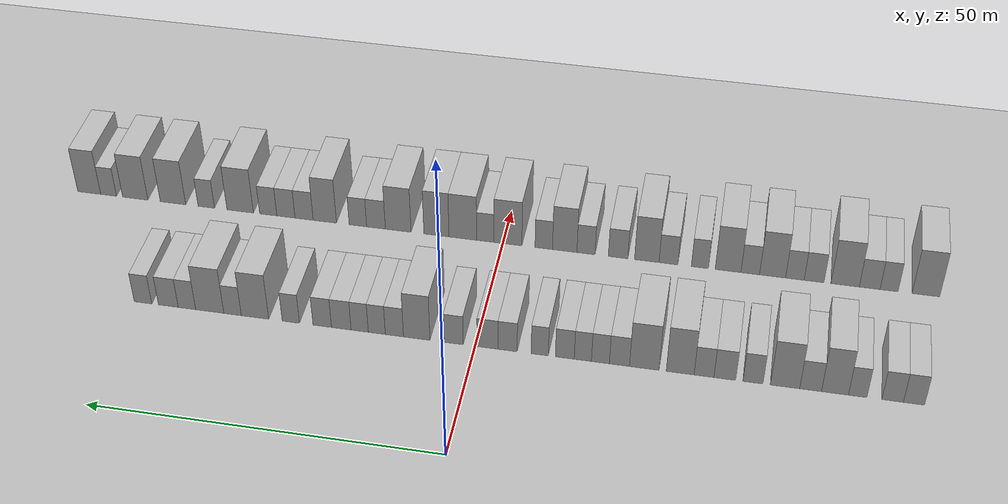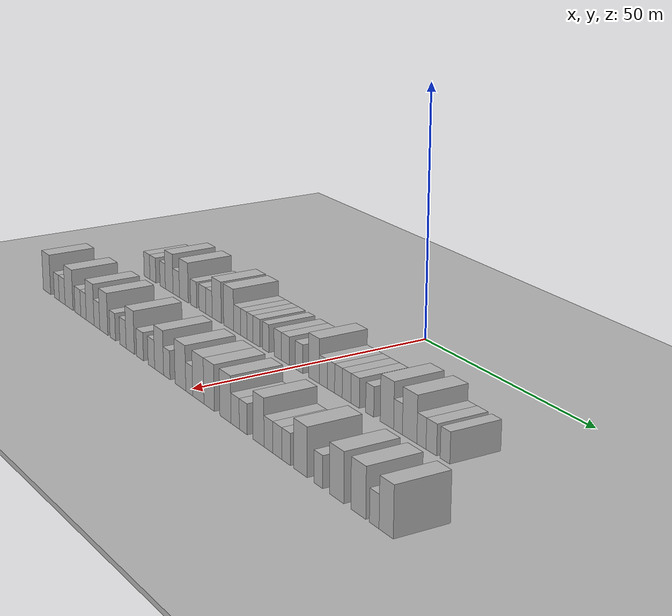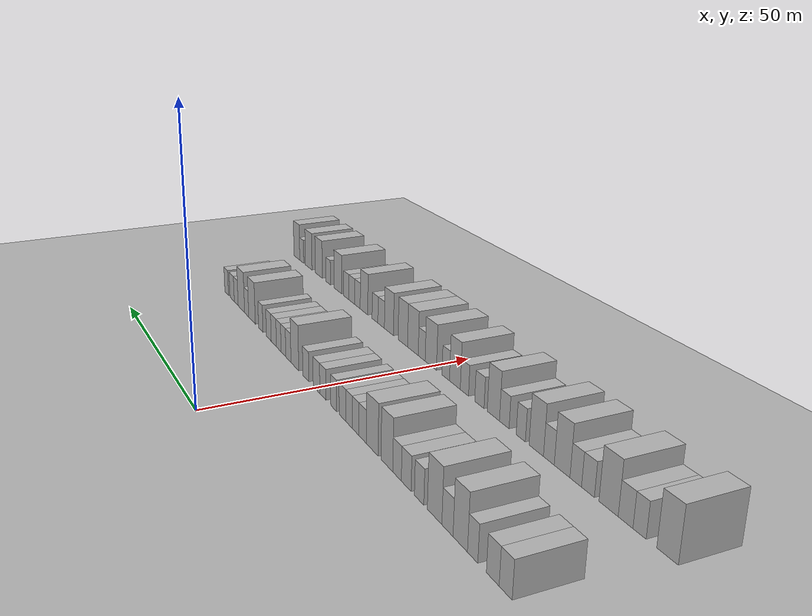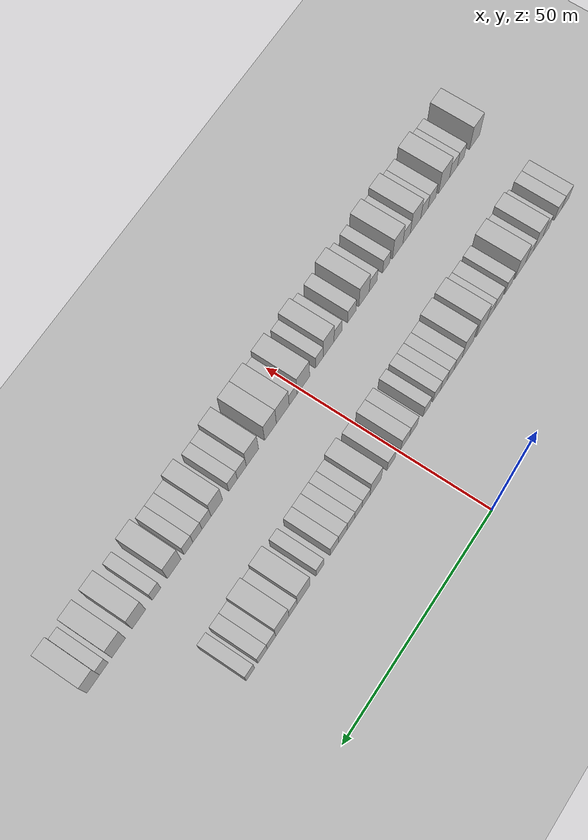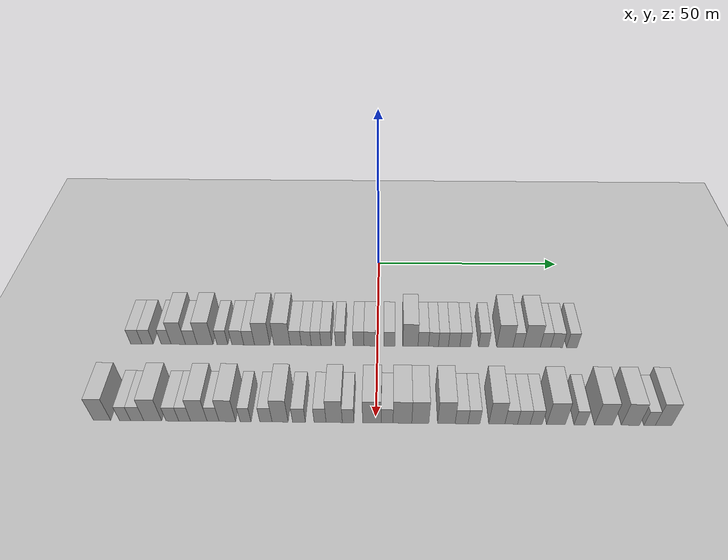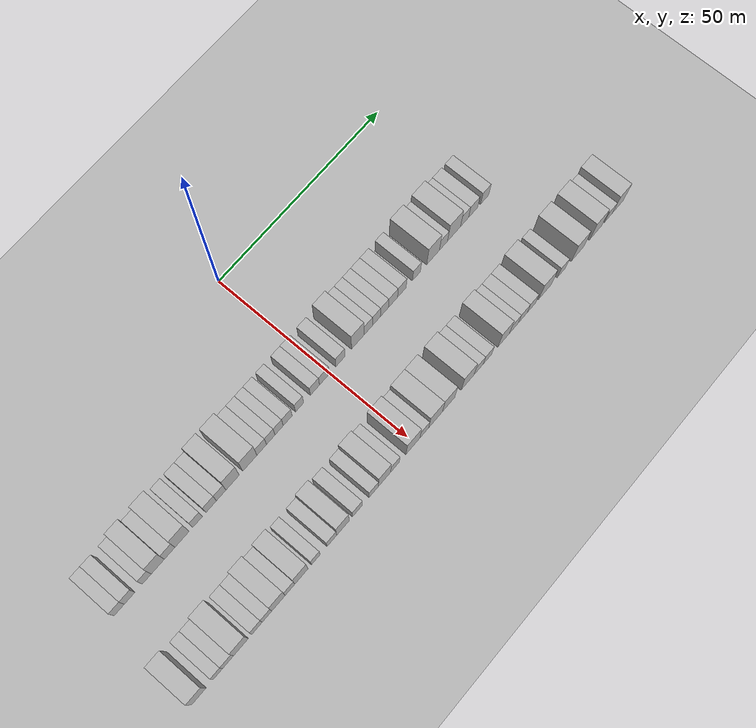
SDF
<sdf version="1.6">
 <world name="default">
  <include><name>ground_plane_1</name><uri>model://HANNAS_ground_plane</uri></include>
  <include>
   <name>ground_plane_2</name>
   <uri>model://HANNAS_ground_plane</uri>
   <pose>100 0 0  0 0 0</pose>
  </include>
  <model name="building_32">
   <static>1</static>
   <pose>25.0000 -60.7182 0 0.000000 0.000000 0.000000</pose>
   <link name="link">
    <pose>0 0 3.00 0 0 0</pose>
    <collision name="collision"><geometry><box><size>10.0000 2.8323 6.0000</size></box></geometry></collision>
    <visual name="visual">
     <cast_shadows>0</cast_shadows>
     <geometry><box><size>10.0000 2.8323 6.0000</size></box></geometry>
     <material>
      <script>
       <uri>model://HANNAS_wall/materials/scripts</uri>
       <uri>model://HANNAS_wall/materials/textures</uri>
       <name>vrc/HANNAS_wall</name>
      </script>
     </material>
    </visual>
   </link>
  </model>
  <model name="building_33">
   <static>1</static>
   <pose>25.0000 -57.8612 0 0.000000 0.000000 0.000000</pose>
   <link name="link">
    <pose>0 0 3.00 0 0 0</pose>
    <collision name="collision"><geometry><box><size>10.0000 2.8819 6.0000</size></box></geometry></collision>
    <visual name="visual">
     <cast_shadows>0</cast_shadows>
     <geometry><box><size>10.0000 2.8819 6.0000</size></box></geometry>
     <material>
      <script>
       <uri>model://HANNAS_wall/materials/scripts</uri>
       <uri>model://HANNAS_wall/materials/textures</uri>
       <name>vrc/HANNAS_wall</name>
      </script>
     </material>
    </visual>
   </link>
  </model>
  <model name="building_34">
   <static>1</static>
   <pose>25.0000 -53.1745 0 0.000000 0.000000 0.000000</pose>
   <link name="link">
    <pose>0 0 3.00 0 0 0</pose>
    <collision name="collision"><geometry><box><size>10.0000 2.4914 6.0000</size></box></geometry></collision>
    <visual name="visual">
     <cast_shadows>0</cast_shadows>
     <geometry><box><size>10.0000 2.4914 6.0000</size></box></geometry>
     <material>
      <script>
       <uri>model://HANNAS_wall/materials/scripts</uri>
       <uri>model://HANNAS_wall/materials/textures</uri>
       <name>vrc/HANNAS_wall</name>
      </script>
     </material>
    </visual>
   </link>
  </model>
  <model name="building_35">
   <static>1</static>
   <pose>25.0000 -50.1071 0 0.000000 0.000000 0.000000</pose>
   <link name="link">
    <pose>0 0 4.50 0 0 0</pose>
    <collision name="collision"><geometry><box><size>10.0000 3.6433 9.0000</size></box></geometry></collision>
    <visual name="visual">
     <cast_shadows>0</cast_shadows>
     <geometry><box><size>10.0000 3.6433 9.0000</size></box></geometry>
     <material>
      <script>
       <uri>model://HANNAS_wall/materials/scripts</uri>
       <uri>model://HANNAS_wall/materials/textures</uri>
       <name>vrc/HANNAS_wall</name>
      </script>
     </material>
    </visual>
   </link>
  </model>
  <model name="building_36">
   <static>1</static>
   <pose>25.0000 -46.8084 0 0.000000 0.000000 0.000000</pose>
   <link name="link">
    <pose>0 0 3.00 0 0 0</pose>
    <collision name="collision"><geometry><box><size>10.0000 2.9542 6.0000</size></box></geometry></collision>
    <visual name="visual">
     <cast_shadows>0</cast_shadows>
     <geometry><box><size>10.0000 2.9542 6.0000</size></box></geometry>
     <material>
      <script>
       <uri>model://HANNAS_wall/materials/scripts</uri>
       <uri>model://HANNAS_wall/materials/textures</uri>
       <name>vrc/HANNAS_wall</name>
      </script>
     </material>
    </visual>
   </link>
  </model>
  <model name="building_37">
   <static>1</static>
   <pose>25.0000 -43.3274 0 0.000000 0.000000 0.000000</pose>
   <link name="link">
    <pose>0 0 4.50 0 0 0</pose>
    <collision name="collision"><geometry><box><size>10.0000 4.0077 9.0000</size></box></geometry></collision>
    <visual name="visual">
     <cast_shadows>0</cast_shadows>
     <geometry><box><size>10.0000 4.0077 9.0000</size></box></geometry>
     <material>
      <script>
       <uri>model://HANNAS_wall/materials/scripts</uri>
       <uri>model://HANNAS_wall/materials/textures</uri>
       <name>vrc/HANNAS_wall</name>
      </script>
     </material>
    </visual>
   </link>
  </model>
  <model name="building_38">
   <static>1</static>
   <pose>25.0000 -38.9517 0 0.000000 0.000000 0.000000</pose>
   <link name="link">
    <pose>0 0 3.00 0 0 0</pose>
    <collision name="collision"><geometry><box><size>10.0000 2.7437 6.0000</size></box></geometry></collision>
    <visual name="visual">
     <cast_shadows>0</cast_shadows>
     <geometry><box><size>10.0000 2.7437 6.0000</size></box></geometry>
     <material>
      <script>
       <uri>model://HANNAS_wall/materials/scripts</uri>
       <uri>model://HANNAS_wall/materials/textures</uri>
       <name>vrc/HANNAS_wall</name>
      </script>
     </material>
    </visual>
   </link>
  </model>
  <model name="building_39">
   <static>1</static>
   <pose>25.0000 -35.0839 0 0.000000 0.000000 0.000000</pose>
   <link name="link">
    <pose>0 0 3.00 0 0 0</pose>
    <collision name="collision"><geometry><box><size>10.0000 2.9920 6.0000</size></box></geometry></collision>
    <visual name="visual">
     <cast_shadows>0</cast_shadows>
     <geometry><box><size>10.0000 2.9920 6.0000</size></box></geometry>
     <material>
      <script>
       <uri>model://HANNAS_wall/materials/scripts</uri>
       <uri>model://HANNAS_wall/materials/textures</uri>
       <name>vrc/HANNAS_wall</name>
      </script>
     </material>
    </visual>
   </link>
  </model>
  <model name="building_40">
   <static>1</static>
   <pose>25.0000 -32.2268 0 0.000000 0.000000 0.000000</pose>
   <link name="link">
    <pose>0 0 3.00 0 0 0</pose>
    <collision name="collision"><geometry><box><size>10.0000 2.7221 6.0000</size></box></geometry></collision>
    <visual name="visual">
     <cast_shadows>0</cast_shadows>
     <geometry><box><size>10.0000 2.7221 6.0000</size></box></geometry>
     <material>
      <script>
       <uri>model://HANNAS_wall/materials/scripts</uri>
       <uri>model://HANNAS_wall/materials/textures</uri>
       <name>vrc/HANNAS_wall</name>
      </script>
     </material>
    </visual>
   </link>
  </model>
  <model name="building_41">
   <static>1</static>
   <pose>25.0000 -28.9342 0 0.000000 0.000000 0.000000</pose>
   <link name="link">
    <pose>0 0 4.50 0 0 0</pose>
    <collision name="collision"><geometry><box><size>10.0000 3.8631 9.0000</size></box></geometry></collision>
    <visual name="visual">
     <cast_shadows>0</cast_shadows>
     <geometry><box><size>10.0000 3.8631 9.0000</size></box></geometry>
     <material>
      <script>
       <uri>model://HANNAS_wall/materials/scripts</uri>
       <uri>model://HANNAS_wall/materials/textures</uri>
       <name>vrc/HANNAS_wall</name>
      </script>
     </material>
    </visual>
   </link>
  </model>
  <model name="building_42">
   <static>1</static>
   <pose>25.0000 -23.9448 0 0.000000 0.000000 0.000000</pose>
   <link name="link">
    <pose>0 0 4.50 0 0 0</pose>
    <collision name="collision"><geometry><box><size>10.0000 4.1158 9.0000</size></box></geometry></collision>
    <visual name="visual">
     <cast_shadows>0</cast_shadows>
     <geometry><box><size>10.0000 4.1158 9.0000</size></box></geometry>
     <material>
      <script>
       <uri>model://HANNAS_wall/materials/scripts</uri>
       <uri>model://HANNAS_wall/materials/textures</uri>
       <name>vrc/HANNAS_wall</name>
      </script>
     </material>
    </visual>
   </link>
  </model>
  <model name="building_43">
   <static>1</static>
   <pose>25.0000 -20.4811 0 0.000000 0.000000 0.000000</pose>
   <link name="link">
    <pose>0 0 3.00 0 0 0</pose>
    <collision name="collision"><geometry><box><size>10.0000 2.8116 6.0000</size></box></geometry></collision>
    <visual name="visual">
     <cast_shadows>0</cast_shadows>
     <geometry><box><size>10.0000 2.8116 6.0000</size></box></geometry>
     <material>
      <script>
       <uri>model://HANNAS_wall/materials/scripts</uri>
       <uri>model://HANNAS_wall/materials/textures</uri>
       <name>vrc/HANNAS_wall</name>
      </script>
     </material>
    </visual>
   </link>
  </model>
  <model name="building_44">
   <static>1</static>
   <pose>25.0000 -17.8155 0 0.000000 0.000000 0.000000</pose>
   <link name="link">
    <pose>0 0 3.00 0 0 0</pose>
    <collision name="collision"><geometry><box><size>10.0000 2.5195 6.0000</size></box></geometry></collision>
    <visual name="visual">
     <cast_shadows>0</cast_shadows>
     <geometry><box><size>10.0000 2.5195 6.0000</size></box></geometry>
     <material>
      <script>
       <uri>model://HANNAS_wall/materials/scripts</uri>
       <uri>model://HANNAS_wall/materials/textures</uri>
       <name>vrc/HANNAS_wall</name>
      </script>
     </material>
    </visual>
   </link>
  </model>
  <model name="building_45">
   <static>1</static>
   <pose>25.0000 -15.3467 0 0.000000 0.000000 0.000000</pose>
   <link name="link">
    <pose>0 0 3.00 0 0 0</pose>
    <collision name="collision"><geometry><box><size>10.0000 2.4181 6.0000</size></box></geometry></collision>
    <visual name="visual">
     <cast_shadows>0</cast_shadows>
     <geometry><box><size>10.0000 2.4181 6.0000</size></box></geometry>
     <material>
      <script>
       <uri>model://HANNAS_wall/materials/scripts</uri>
       <uri>model://HANNAS_wall/materials/textures</uri>
       <name>vrc/HANNAS_wall</name>
      </script>
     </material>
    </visual>
   </link>
  </model>
  <model name="building_46">
   <static>1</static>
   <pose>25.0000 -12.8056 0 0.000000 0.000000 0.000000</pose>
   <link name="link">
    <pose>0 0 3.00 0 0 0</pose>
    <collision name="collision"><geometry><box><size>10.0000 2.6641 6.0000</size></box></geometry></collision>
    <visual name="visual">
     <cast_shadows>0</cast_shadows>
     <geometry><box><size>10.0000 2.6641 6.0000</size></box></geometry>
     <material>
      <script>
       <uri>model://HANNAS_wall/materials/scripts</uri>
       <uri>model://HANNAS_wall/materials/textures</uri>
       <name>vrc/HANNAS_wall</name>
      </script>
     </material>
    </visual>
   </link>
  </model>
  <model name="building_47">
   <static>1</static>
   <pose>25.0000 -9.2607 0 0.000000 0.000000 0.000000</pose>
   <link name="link">
    <pose>0 0 3.00 0 0 0</pose>
    <collision name="collision"><geometry><box><size>10.0000 2.4256 6.0000</size></box></geometry></collision>
    <visual name="visual">
     <cast_shadows>0</cast_shadows>
     <geometry><box><size>10.0000 2.4256 6.0000</size></box></geometry>
     <material>
      <script>
       <uri>model://HANNAS_wall/materials/scripts</uri>
       <uri>model://HANNAS_wall/materials/textures</uri>
       <name>vrc/HANNAS_wall</name>
      </script>
     </material>
    </visual>
   </link>
  </model>
  <model name="building_48">
   <static>1</static>
   <pose>25.0000 -4.6812 0 0.000000 0.000000 0.000000</pose>
   <link name="link">
    <pose>0 0 3.00 0 0 0</pose>
    <collision name="collision"><geometry><box><size>10.0000 2.7335 6.0000</size></box></geometry></collision>
    <visual name="visual">
     <cast_shadows>0</cast_shadows>
     <geometry><box><size>10.0000 2.7335 6.0000</size></box></geometry>
     <material>
      <script>
       <uri>model://HANNAS_wall/materials/scripts</uri>
       <uri>model://HANNAS_wall/materials/textures</uri>
       <name>vrc/HANNAS_wall</name>
      </script>
     </material>
    </visual>
   </link>
  </model>
  <model name="building_49">
   <static>1</static>
   <pose>25.0000 -1.8331 0 0.000000 0.000000 0.000000</pose>
   <link name="link">
    <pose>0 0 3.00 0 0 0</pose>
    <collision name="collision"><geometry><box><size>10.0000 2.9627 6.0000</size></box></geometry></collision>
    <visual name="visual">
     <cast_shadows>0</cast_shadows>
     <geometry><box><size>10.0000 2.9627 6.0000</size></box></geometry>
     <material>
      <script>
       <uri>model://HANNAS_wall/materials/scripts</uri>
       <uri>model://HANNAS_wall/materials/textures</uri>
       <name>vrc/HANNAS_wall</name>
      </script>
     </material>
    </visual>
   </link>
  </model>
  <model name="building_50">
   <static>1</static>
   <pose>25.0000 3.0453 0 0.000000 0.000000 0.000000</pose>
   <link name="link">
    <pose>0 0 3.00 0 0 0</pose>
    <collision name="collision"><geometry><box><size>10.0000 2.7942 6.0000</size></box></geometry></collision>
    <visual name="visual">
     <cast_shadows>0</cast_shadows>
     <geometry><box><size>10.0000 2.7942 6.0000</size></box></geometry>
     <material>
      <script>
       <uri>model://HANNAS_wall/materials/scripts</uri>
       <uri>model://HANNAS_wall/materials/textures</uri>
       <name>vrc/HANNAS_wall</name>
      </script>
     </material>
    </visual>
   </link>
  </model>
  <model name="building_51">
   <static>1</static>
   <pose>25.0000 8.3558 0 0.000000 0.000000 0.000000</pose>
   <link name="link">
    <pose>0 0 4.50 0 0 0</pose>
    <collision name="collision"><geometry><box><size>10.0000 3.8267 9.0000</size></box></geometry></collision>
    <visual name="visual">
     <cast_shadows>0</cast_shadows>
     <geometry><box><size>10.0000 3.8267 9.0000</size></box></geometry>
     <material>
      <script>
       <uri>model://HANNAS_wall/materials/scripts</uri>
       <uri>model://HANNAS_wall/materials/textures</uri>
       <name>vrc/HANNAS_wall</name>
      </script>
     </material>
    </visual>
   </link>
  </model>
  <model name="building_52">
   <static>1</static>
   <pose>25.0000 11.5897 0 0.000000 0.000000 0.000000</pose>
   <link name="link">
    <pose>0 0 3.00 0 0 0</pose>
    <collision name="collision"><geometry><box><size>10.0000 2.6410 6.0000</size></box></geometry></collision>
    <visual name="visual">
     <cast_shadows>0</cast_shadows>
     <geometry><box><size>10.0000 2.6410 6.0000</size></box></geometry>
     <material>
      <script>
       <uri>model://HANNAS_wall/materials/scripts</uri>
       <uri>model://HANNAS_wall/materials/textures</uri>
       <name>vrc/HANNAS_wall</name>
      </script>
     </material>
    </visual>
   </link>
  </model>
  <model name="building_53">
   <static>1</static>
   <pose>25.0000 14.1495 0 0.000000 0.000000 0.000000</pose>
   <link name="link">
    <pose>0 0 3.00 0 0 0</pose>
    <collision name="collision"><geometry><box><size>10.0000 2.4786 6.0000</size></box></geometry></collision>
    <visual name="visual">
     <cast_shadows>0</cast_shadows>
     <geometry><box><size>10.0000 2.4786 6.0000</size></box></geometry>
     <material>
      <script>
       <uri>model://HANNAS_wall/materials/scripts</uri>
       <uri>model://HANNAS_wall/materials/textures</uri>
       <name>vrc/HANNAS_wall</name>
      </script>
     </material>
    </visual>
   </link>
  </model>
  <model name="building_54">
   <static>1</static>
   <pose>25.0000 16.6423 0 0.000000 0.000000 0.000000</pose>
   <link name="link">
    <pose>0 0 3.00 0 0 0</pose>
    <collision name="collision"><geometry><box><size>10.0000 2.5071 6.0000</size></box></geometry></collision>
    <visual name="visual">
     <cast_shadows>0</cast_shadows>
     <geometry><box><size>10.0000 2.5071 6.0000</size></box></geometry>
     <material>
      <script>
       <uri>model://HANNAS_wall/materials/scripts</uri>
       <uri>model://HANNAS_wall/materials/textures</uri>
       <name>vrc/HANNAS_wall</name>
      </script>
     </material>
    </visual>
   </link>
  </model>
  <model name="building_55">
   <static>1</static>
   <pose>25.0000 19.3289 0 0.000000 0.000000 0.000000</pose>
   <link name="link">
    <pose>0 0 3.00 0 0 0</pose>
    <collision name="collision"><geometry><box><size>10.0000 2.8659 6.0000</size></box></geometry></collision>
    <visual name="visual">
     <cast_shadows>0</cast_shadows>
     <geometry><box><size>10.0000 2.8659 6.0000</size></box></geometry>
     <material>
      <script>
       <uri>model://HANNAS_wall/materials/scripts</uri>
       <uri>model://HANNAS_wall/materials/textures</uri>
       <name>vrc/HANNAS_wall</name>
      </script>
     </material>
    </visual>
   </link>
  </model>
  <model name="building_56">
   <static>1</static>
   <pose>25.0000 22.1163 0 0.000000 0.000000 0.000000</pose>
   <link name="link">
    <pose>0 0 3.00 0 0 0</pose>
    <collision name="collision"><geometry><box><size>10.0000 2.7088 6.0000</size></box></geometry></collision>
    <visual name="visual">
     <cast_shadows>0</cast_shadows>
     <geometry><box><size>10.0000 2.7088 6.0000</size></box></geometry>
     <material>
      <script>
       <uri>model://HANNAS_wall/materials/scripts</uri>
       <uri>model://HANNAS_wall/materials/textures</uri>
       <name>vrc/HANNAS_wall</name>
      </script>
     </material>
    </visual>
   </link>
  </model>
  <model name="building_57">
   <static>1</static>
   <pose>25.0000 26.7420 0 0.000000 0.000000 0.000000</pose>
   <link name="link">
    <pose>0 0 3.00 0 0 0</pose>
    <collision name="collision"><geometry><box><size>10.0000 2.5427 6.0000</size></box></geometry></collision>
    <visual name="visual">
     <cast_shadows>0</cast_shadows>
     <geometry><box><size>10.0000 2.5427 6.0000</size></box></geometry>
     <material>
      <script>
       <uri>model://HANNAS_wall/materials/scripts</uri>
       <uri>model://HANNAS_wall/materials/textures</uri>
       <name>vrc/HANNAS_wall</name>
      </script>
     </material>
    </visual>
   </link>
  </model>
  <model name="building_58">
   <static>1</static>
   <pose>25.0000 32.0538 0 0.000000 0.000000 0.000000</pose>
   <link name="link">
    <pose>0 0 4.50 0 0 0</pose>
    <collision name="collision"><geometry><box><size>10.0000 4.0809 9.0000</size></box></geometry></collision>
    <visual name="visual">
     <cast_shadows>0</cast_shadows>
     <geometry><box><size>10.0000 4.0809 9.0000</size></box></geometry>
     <material>
      <script>
       <uri>model://HANNAS_wall/materials/scripts</uri>
       <uri>model://HANNAS_wall/materials/textures</uri>
       <name>vrc/HANNAS_wall</name>
      </script>
     </material>
    </visual>
   </link>
  </model>
  <model name="building_59">
   <static>1</static>
   <pose>25.0000 35.3955 0 0.000000 0.000000 0.000000</pose>
   <link name="link">
    <pose>0 0 3.00 0 0 0</pose>
    <collision name="collision"><geometry><box><size>10.0000 2.6026 6.0000</size></box></geometry></collision>
    <visual name="visual">
     <cast_shadows>0</cast_shadows>
     <geometry><box><size>10.0000 2.6026 6.0000</size></box></geometry>
     <material>
      <script>
       <uri>model://HANNAS_wall/materials/scripts</uri>
       <uri>model://HANNAS_wall/materials/textures</uri>
       <name>vrc/HANNAS_wall</name>
      </script>
     </material>
    </visual>
   </link>
  </model>
  <model name="building_60">
   <static>1</static>
   <pose>25.0000 38.8089 0 0.000000 0.000000 0.000000</pose>
   <link name="link">
    <pose>0 0 4.50 0 0 0</pose>
    <collision name="collision"><geometry><box><size>10.0000 4.2241 9.0000</size></box></geometry></collision>
    <visual name="visual">
     <cast_shadows>0</cast_shadows>
     <geometry><box><size>10.0000 4.2241 9.0000</size></box></geometry>
     <material>
      <script>
       <uri>model://HANNAS_wall/materials/scripts</uri>
       <uri>model://HANNAS_wall/materials/textures</uri>
       <name>vrc/HANNAS_wall</name>
      </script>
     </material>
    </visual>
   </link>
  </model>
  <model name="building_61">
   <static>1</static>
   <pose>25.0000 42.2331 0 0.000000 0.000000 0.000000</pose>
   <link name="link">
    <pose>0 0 3.00 0 0 0</pose>
    <collision name="collision"><geometry><box><size>10.0000 2.6244 6.0000</size></box></geometry></collision>
    <visual name="visual">
     <cast_shadows>0</cast_shadows>
     <geometry><box><size>10.0000 2.6244 6.0000</size></box></geometry>
     <material>
      <script>
       <uri>model://HANNAS_wall/materials/scripts</uri>
       <uri>model://HANNAS_wall/materials/textures</uri>
       <name>vrc/HANNAS_wall</name>
      </script>
     </material>
    </visual>
   </link>
  </model>
  <model name="building_62">
   <static>1</static>
   <pose>25.0000 45.0317 0 0.000000 0.000000 0.000000</pose>
   <link name="link">
    <pose>0 0 3.00 0 0 0</pose>
    <collision name="collision"><geometry><box><size>10.0000 2.9729 6.0000</size></box></geometry></collision>
    <visual name="visual">
     <cast_shadows>0</cast_shadows>
     <geometry><box><size>10.0000 2.9729 6.0000</size></box></geometry>
     <material>
      <script>
       <uri>model://HANNAS_wall/materials/scripts</uri>
       <uri>model://HANNAS_wall/materials/textures</uri>
       <name>vrc/HANNAS_wall</name>
      </script>
     </material>
    </visual>
   </link>
  </model>
  <model name="building_63">
   <static>1</static>
   <pose>25.0000 48.8446 0 0.000000 0.000000 0.000000</pose>
   <link name="link">
    <pose>0 0 3.00 0 0 0</pose>
    <collision name="collision"><geometry><box><size>10.0000 2.6530 6.0000</size></box></geometry></collision>
    <visual name="visual">
     <cast_shadows>0</cast_shadows>
     <geometry><box><size>10.0000 2.6530 6.0000</size></box></geometry>
     <material>
      <script>
       <uri>model://HANNAS_wall/materials/scripts</uri>
       <uri>model://HANNAS_wall/materials/textures</uri>
       <name>vrc/HANNAS_wall</name>
      </script>
     </material>
    </visual>
   </link>
  </model>
  <model name="building_126">
   <static>1</static>
   <pose>47.0000 -62.5123 0 0.000000 0.000000 0.000000</pose>
   <link name="link">
    <pose>0 0 4.50 0 0 0</pose>
    <collision name="collision"><geometry><box><size>10.0000 3.9472 9.0000</size></box></geometry></collision>
    <visual name="visual">
     <cast_shadows>0</cast_shadows>
     <geometry><box><size>10.0000 3.9472 9.0000</size></box></geometry>
     <material>
      <script>
       <uri>model://HANNAS_wall/materials/scripts</uri>
       <uri>model://HANNAS_wall/materials/textures</uri>
       <name>vrc/HANNAS_wall</name>
      </script>
     </material>
    </visual>
   </link>
  </model>
  <model name="building_127">
   <static>1</static>
   <pose>47.0000 -57.2431 0 0.000000 0.000000 0.000000</pose>
   <link name="link">
    <pose>0 0 3.00 0 0 0</pose>
    <collision name="collision"><geometry><box><size>10.0000 2.5912 6.0000</size></box></geometry></collision>
    <visual name="visual">
     <cast_shadows>0</cast_shadows>
     <geometry><box><size>10.0000 2.5912 6.0000</size></box></geometry>
     <material>
      <script>
       <uri>model://HANNAS_wall/materials/scripts</uri>
       <uri>model://HANNAS_wall/materials/textures</uri>
       <name>vrc/HANNAS_wall</name>
      </script>
     </material>
    </visual>
   </link>
  </model>
  <model name="building_128">
   <static>1</static>
   <pose>47.0000 -54.4515 0 0.000000 0.000000 0.000000</pose>
   <link name="link">
    <pose>0 0 3.00 0 0 0</pose>
    <collision name="collision"><geometry><box><size>10.0000 2.9921 6.0000</size></box></geometry></collision>
    <visual name="visual">
     <cast_shadows>0</cast_shadows>
     <geometry><box><size>10.0000 2.9921 6.0000</size></box></geometry>
     <material>
      <script>
       <uri>model://HANNAS_wall/materials/scripts</uri>
       <uri>model://HANNAS_wall/materials/textures</uri>
       <name>vrc/HANNAS_wall</name>
      </script>
     </material>
    </visual>
   </link>
  </model>
  <model name="building_129">
   <static>1</static>
   <pose>47.0000 -50.9074 0 0.000000 0.000000 0.000000</pose>
   <link name="link">
    <pose>0 0 4.50 0 0 0</pose>
    <collision name="collision"><geometry><box><size>10.0000 4.0962 9.0000</size></box></geometry></collision>
    <visual name="visual">
     <cast_shadows>0</cast_shadows>
     <geometry><box><size>10.0000 4.0962 9.0000</size></box></geometry>
     <material>
      <script>
       <uri>model://HANNAS_wall/materials/scripts</uri>
       <uri>model://HANNAS_wall/materials/textures</uri>
       <name>vrc/HANNAS_wall</name>
      </script>
     </material>
    </visual>
   </link>
  </model>
  <model name="building_130">
   <static>1</static>
   <pose>47.0000 -46.4119 0 0.000000 0.000000 0.000000</pose>
   <link name="link">
    <pose>0 0 3.00 0 0 0</pose>
    <collision name="collision"><geometry><box><size>10.0000 2.8947 6.0000</size></box></geometry></collision>
    <visual name="visual">
     <cast_shadows>0</cast_shadows>
     <geometry><box><size>10.0000 2.8947 6.0000</size></box></geometry>
     <material>
      <script>
       <uri>model://HANNAS_wall/materials/scripts</uri>
       <uri>model://HANNAS_wall/materials/textures</uri>
       <name>vrc/HANNAS_wall</name>
      </script>
     </material>
    </visual>
   </link>
  </model>
  <model name="building_131">
   <static>1</static>
   <pose>47.0000 -43.6145 0 0.000000 0.000000 0.000000</pose>
   <link name="link">
    <pose>0 0 3.00 0 0 0</pose>
    <collision name="collision"><geometry><box><size>10.0000 2.7003 6.0000</size></box></geometry></collision>
    <visual name="visual">
     <cast_shadows>0</cast_shadows>
     <geometry><box><size>10.0000 2.7003 6.0000</size></box></geometry>
     <material>
      <script>
       <uri>model://HANNAS_wall/materials/scripts</uri>
       <uri>model://HANNAS_wall/materials/textures</uri>
       <name>vrc/HANNAS_wall</name>
      </script>
     </material>
    </visual>
   </link>
  </model>
  <model name="building_132">
   <static>1</static>
   <pose>47.0000 -40.3573 0 0.000000 0.000000 0.000000</pose>
   <link name="link">
    <pose>0 0 4.50 0 0 0</pose>
    <collision name="collision"><geometry><box><size>10.0000 3.8140 9.0000</size></box></geometry></collision>
    <visual name="visual">
     <cast_shadows>0</cast_shadows>
     <geometry><box><size>10.0000 3.8140 9.0000</size></box></geometry>
     <material>
      <script>
       <uri>model://HANNAS_wall/materials/scripts</uri>
       <uri>model://HANNAS_wall/materials/textures</uri>
       <name>vrc/HANNAS_wall</name>
      </script>
     </material>
    </visual>
   </link>
  </model>
  <model name="building_133">
   <static>1</static>
   <pose>47.0000 -37.0878 0 0.000000 0.000000 0.000000</pose>
   <link name="link">
    <pose>0 0 3.00 0 0 0</pose>
    <collision name="collision"><geometry><box><size>10.0000 2.7249 6.0000</size></box></geometry></collision>
    <visual name="visual">
     <cast_shadows>0</cast_shadows>
     <geometry><box><size>10.0000 2.7249 6.0000</size></box></geometry>
     <material>
      <script>
       <uri>model://HANNAS_wall/materials/scripts</uri>
       <uri>model://HANNAS_wall/materials/textures</uri>
       <name>vrc/HANNAS_wall</name>
      </script>
     </material>
    </visual>
   </link>
  </model>
  <model name="building_134">
   <static>1</static>
   <pose>47.0000 -33.8292 0 0.000000 0.000000 0.000000</pose>
   <link name="link">
    <pose>0 0 4.50 0 0 0</pose>
    <collision name="collision"><geometry><box><size>10.0000 3.7924 9.0000</size></box></geometry></collision>
    <visual name="visual">
     <cast_shadows>0</cast_shadows>
     <geometry><box><size>10.0000 3.7924 9.0000</size></box></geometry>
     <material>
      <script>
       <uri>model://HANNAS_wall/materials/scripts</uri>
       <uri>model://HANNAS_wall/materials/textures</uri>
       <name>vrc/HANNAS_wall</name>
      </script>
     </material>
    </visual>
   </link>
  </model>
  <model name="building_135">
   <static>1</static>
   <pose>47.0000 -29.6704 0 0.000000 0.000000 0.000000</pose>
   <link name="link">
    <pose>0 0 3.00 0 0 0</pose>
    <collision name="collision"><geometry><box><size>10.0000 2.5253 6.0000</size></box></geometry></collision>
    <visual name="visual">
     <cast_shadows>0</cast_shadows>
     <geometry><box><size>10.0000 2.5253 6.0000</size></box></geometry>
     <material>
      <script>
       <uri>model://HANNAS_wall/materials/scripts</uri>
       <uri>model://HANNAS_wall/materials/textures</uri>
       <name>vrc/HANNAS_wall</name>
      </script>
     </material>
    </visual>
   </link>
  </model>
  <model name="building_136">
   <static>1</static>
   <pose>47.0000 -25.0109 0 0.000000 0.000000 0.000000</pose>
   <link name="link">
    <pose>0 0 3.00 0 0 0</pose>
    <collision name="collision"><geometry><box><size>10.0000 2.7937 6.0000</size></box></geometry></collision>
    <visual name="visual">
     <cast_shadows>0</cast_shadows>
     <geometry><box><size>10.0000 2.7937 6.0000</size></box></geometry>
     <material>
      <script>
       <uri>model://HANNAS_wall/materials/scripts</uri>
       <uri>model://HANNAS_wall/materials/textures</uri>
       <name>vrc/HANNAS_wall</name>
      </script>
     </material>
    </visual>
   </link>
  </model>
  <model name="building_137">
   <static>1</static>
   <pose>47.0000 -21.7808 0 0.000000 0.000000 0.000000</pose>
   <link name="link">
    <pose>0 0 4.50 0 0 0</pose>
    <collision name="collision"><geometry><box><size>10.0000 3.6663 9.0000</size></box></geometry></collision>
    <visual name="visual">
     <cast_shadows>0</cast_shadows>
     <geometry><box><size>10.0000 3.6663 9.0000</size></box></geometry>
     <material>
      <script>
       <uri>model://HANNAS_wall/materials/scripts</uri>
       <uri>model://HANNAS_wall/materials/textures</uri>
       <name>vrc/HANNAS_wall</name>
      </script>
     </material>
    </visual>
   </link>
  </model>
  <model name="building_138">
   <static>1</static>
   <pose>47.0000 -17.4860 0 0.000000 0.000000 0.000000</pose>
   <link name="link">
    <pose>0 0 3.00 0 0 0</pose>
    <collision name="collision"><geometry><box><size>10.0000 2.9234 6.0000</size></box></geometry></collision>
    <visual name="visual">
     <cast_shadows>0</cast_shadows>
     <geometry><box><size>10.0000 2.9234 6.0000</size></box></geometry>
     <material>
      <script>
       <uri>model://HANNAS_wall/materials/scripts</uri>
       <uri>model://HANNAS_wall/materials/textures</uri>
       <name>vrc/HANNAS_wall</name>
      </script>
     </material>
    </visual>
   </link>
  </model>
  <model name="building_139">
   <static>1</static>
   <pose>47.0000 -12.6588 0 0.000000 0.000000 0.000000</pose>
   <link name="link">
    <pose>0 0 3.00 0 0 0</pose>
    <collision name="collision"><geometry><box><size>10.0000 2.7310 6.0000</size></box></geometry></collision>
    <visual name="visual">
     <cast_shadows>0</cast_shadows>
     <geometry><box><size>10.0000 2.7310 6.0000</size></box></geometry>
     <material>
      <script>
       <uri>model://HANNAS_wall/materials/scripts</uri>
       <uri>model://HANNAS_wall/materials/textures</uri>
       <name>vrc/HANNAS_wall</name>
      </script>
     </material>
    </visual>
   </link>
  </model>
  <model name="building_140">
   <static>1</static>
   <pose>47.0000 -9.4412 0 0.000000 0.000000 0.000000</pose>
   <link name="link">
    <pose>0 0 4.50 0 0 0</pose>
    <collision name="collision"><geometry><box><size>10.0000 3.7040 9.0000</size></box></geometry></collision>
    <visual name="visual">
     <cast_shadows>0</cast_shadows>
     <geometry><box><size>10.0000 3.7040 9.0000</size></box></geometry>
     <material>
      <script>
       <uri>model://HANNAS_wall/materials/scripts</uri>
       <uri>model://HANNAS_wall/materials/textures</uri>
       <name>vrc/HANNAS_wall</name>
      </script>
     </material>
    </visual>
   </link>
  </model>
  <model name="building_141">
   <static>1</static>
   <pose>47.0000 -6.2666 0 0.000000 0.000000 0.000000</pose>
   <link name="link">
    <pose>0 0 3.00 0 0 0</pose>
    <collision name="collision"><geometry><box><size>10.0000 2.6452 6.0000</size></box></geometry></collision>
    <visual name="visual">
     <cast_shadows>0</cast_shadows>
     <geometry><box><size>10.0000 2.6452 6.0000</size></box></geometry>
     <material>
      <script>
       <uri>model://HANNAS_wall/materials/scripts</uri>
       <uri>model://HANNAS_wall/materials/textures</uri>
       <name>vrc/HANNAS_wall</name>
      </script>
     </material>
    </visual>
   </link>
  </model>
  <model name="building_142">
   <static>1</static>
   <pose>47.0000 -0.8253 0 0.000000 0.000000 0.000000</pose>
   <link name="link">
    <pose>0 0 4.50 0 0 0</pose>
    <collision name="collision"><geometry><box><size>10.0000 4.2374 9.0000</size></box></geometry></collision>
    <visual name="visual">
     <cast_shadows>0</cast_shadows>
     <geometry><box><size>10.0000 4.2374 9.0000</size></box></geometry>
     <material>
      <script>
       <uri>model://HANNAS_wall/materials/scripts</uri>
       <uri>model://HANNAS_wall/materials/textures</uri>
       <name>vrc/HANNAS_wall</name>
      </script>
     </material>
    </visual>
   </link>
  </model>
  <model name="building_143">
   <static>1</static>
   <pose>47.0000 2.6254 0 0.000000 0.000000 0.000000</pose>
   <link name="link">
    <pose>0 0 3.00 0 0 0</pose>
    <collision name="collision"><geometry><box><size>10.0000 2.6640 6.0000</size></box></geometry></collision>
    <visual name="visual">
     <cast_shadows>0</cast_shadows>
     <geometry><box><size>10.0000 2.6640 6.0000</size></box></geometry>
     <material>
      <script>
       <uri>model://HANNAS_wall/materials/scripts</uri>
       <uri>model://HANNAS_wall/materials/textures</uri>
       <name>vrc/HANNAS_wall</name>
      </script>
     </material>
    </visual>
   </link>
  </model>
  <model name="building_144">
   <static>1</static>
   <pose>47.0000 6.0896 0 0.000000 0.000000 0.000000</pose>
   <link name="link">
    <pose>0 0 4.50 0 0 0</pose>
    <collision name="collision"><geometry><box><size>10.0000 4.2644 9.0000</size></box></geometry></collision>
    <visual name="visual">
     <cast_shadows>0</cast_shadows>
     <geometry><box><size>10.0000 4.2644 9.0000</size></box></geometry>
     <material>
      <script>
       <uri>model://HANNAS_wall/materials/scripts</uri>
       <uri>model://HANNAS_wall/materials/textures</uri>
       <name>vrc/HANNAS_wall</name>
      </script>
     </material>
    </visual>
   </link>
  </model>
  <model name="building_145">
   <static>1</static>
   <pose>47.0000 10.1613 0 0.000000 0.000000 0.000000</pose>
   <link name="link">
    <pose>0 0 4.50 0 0 0</pose>
    <collision name="collision"><geometry><box><size>10.0000 3.8790 9.0000</size></box></geometry></collision>
    <visual name="visual">
     <cast_shadows>0</cast_shadows>
     <geometry><box><size>10.0000 3.8790 9.0000</size></box></geometry>
     <material>
      <script>
       <uri>model://HANNAS_wall/materials/scripts</uri>
       <uri>model://HANNAS_wall/materials/textures</uri>
       <name>vrc/HANNAS_wall</name>
      </script>
     </material>
    </visual>
   </link>
  </model>
  <model name="building_146">
   <static>1</static>
   <pose>47.0000 16.0942 0 0.000000 0.000000 0.000000</pose>
   <link name="link">
    <pose>0 0 4.50 0 0 0</pose>
    <collision name="collision"><geometry><box><size>10.0000 3.9869 9.0000</size></box></geometry></collision>
    <visual name="visual">
     <cast_shadows>0</cast_shadows>
     <geometry><box><size>10.0000 3.9869 9.0000</size></box></geometry>
     <material>
      <script>
       <uri>model://HANNAS_wall/materials/scripts</uri>
       <uri>model://HANNAS_wall/materials/textures</uri>
       <name>vrc/HANNAS_wall</name>
      </script>
     </material>
    </visual>
   </link>
  </model>
  <model name="building_147">
   <static>1</static>
   <pose>47.0000 19.5535 0 0.000000 0.000000 0.000000</pose>
   <link name="link">
    <pose>0 0 3.00 0 0 0</pose>
    <collision name="collision"><geometry><box><size>10.0000 2.9317 6.0000</size></box></geometry></collision>
    <visual name="visual">
     <cast_shadows>0</cast_shadows>
     <geometry><box><size>10.0000 2.9317 6.0000</size></box></geometry>
     <material>
      <script>
       <uri>model://HANNAS_wall/materials/scripts</uri>
       <uri>model://HANNAS_wall/materials/textures</uri>
       <name>vrc/HANNAS_wall</name>
      </script>
     </material>
    </visual>
   </link>
  </model>
  <model name="building_148">
   <static>1</static>
   <pose>47.0000 22.3784 0 0.000000 0.000000 0.000000</pose>
   <link name="link">
    <pose>0 0 3.00 0 0 0</pose>
    <collision name="collision"><geometry><box><size>10.0000 2.7182 6.0000</size></box></geometry></collision>
    <visual name="visual">
     <cast_shadows>0</cast_shadows>
     <geometry><box><size>10.0000 2.7182 6.0000</size></box></geometry>
     <material>
      <script>
       <uri>model://HANNAS_wall/materials/scripts</uri>
       <uri>model://HANNAS_wall/materials/textures</uri>
       <name>vrc/HANNAS_wall</name>
      </script>
     </material>
    </visual>
   </link>
  </model>
  <model name="building_149">
   <static>1</static>
   <pose>47.0000 27.5688 0 0.000000 0.000000 0.000000</pose>
   <link name="link">
    <pose>0 0 4.50 0 0 0</pose>
    <collision name="collision"><geometry><box><size>10.0000 3.6625 9.0000</size></box></geometry></collision>
    <visual name="visual">
     <cast_shadows>0</cast_shadows>
     <geometry><box><size>10.0000 3.6625 9.0000</size></box></geometry>
     <material>
      <script>
       <uri>model://HANNAS_wall/materials/scripts</uri>
       <uri>model://HANNAS_wall/materials/textures</uri>
       <name>vrc/HANNAS_wall</name>
      </script>
     </material>
    </visual>
   </link>
  </model>
  <model name="building_150">
   <static>1</static>
   <pose>47.0000 30.8386 0 0.000000 0.000000 0.000000</pose>
   <link name="link">
    <pose>0 0 3.00 0 0 0</pose>
    <collision name="collision"><geometry><box><size>10.0000 2.8771 6.0000</size></box></geometry></collision>
    <visual name="visual">
     <cast_shadows>0</cast_shadows>
     <geometry><box><size>10.0000 2.8771 6.0000</size></box></geometry>
     <material>
      <script>
       <uri>model://HANNAS_wall/materials/scripts</uri>
       <uri>model://HANNAS_wall/materials/textures</uri>
       <name>vrc/HANNAS_wall</name>
      </script>
     </material>
    </visual>
   </link>
  </model>
  <model name="building_151">
   <static>1</static>
   <pose>47.0000 33.7108 0 0.000000 0.000000 0.000000</pose>
   <link name="link">
    <pose>0 0 3.00 0 0 0</pose>
    <collision name="collision"><geometry><box><size>10.0000 2.8673 6.0000</size></box></geometry></collision>
    <visual name="visual">
     <cast_shadows>0</cast_shadows>
     <geometry><box><size>10.0000 2.8673 6.0000</size></box></geometry>
     <material>
      <script>
       <uri>model://HANNAS_wall/materials/scripts</uri>
       <uri>model://HANNAS_wall/materials/textures</uri>
       <name>vrc/HANNAS_wall</name>
      </script>
     </material>
    </visual>
   </link>
  </model>
  <model name="building_152">
   <static>1</static>
   <pose>47.0000 36.5100 0 0.000000 0.000000 0.000000</pose>
   <link name="link">
    <pose>0 0 3.00 0 0 0</pose>
    <collision name="collision"><geometry><box><size>10.0000 2.7312 6.0000</size></box></geometry></collision>
    <visual name="visual">
     <cast_shadows>0</cast_shadows>
     <geometry><box><size>10.0000 2.7312 6.0000</size></box></geometry>
     <material>
      <script>
       <uri>model://HANNAS_wall/materials/scripts</uri>
       <uri>model://HANNAS_wall/materials/textures</uri>
       <name>vrc/HANNAS_wall</name>
      </script>
     </material>
    </visual>
   </link>
  </model>
  <model name="building_153">
   <static>1</static>
   <pose>47.0000 40.9857 0 0.000000 0.000000 0.000000</pose>
   <link name="link">
    <pose>0 0 4.50 0 0 0</pose>
    <collision name="collision"><geometry><box><size>10.0000 4.2202 9.0000</size></box></geometry></collision>
    <visual name="visual">
     <cast_shadows>0</cast_shadows>
     <geometry><box><size>10.0000 4.2202 9.0000</size></box></geometry>
     <material>
      <script>
       <uri>model://HANNAS_wall/materials/scripts</uri>
       <uri>model://HANNAS_wall/materials/textures</uri>
       <name>vrc/HANNAS_wall</name>
      </script>
     </material>
    </visual>
   </link>
  </model>
  <model name="building_154">
   <static>1</static>
   <pose>47.0000 46.4122 0 0.000000 0.000000 0.000000</pose>
   <link name="link">
    <pose>0 0 3.00 0 0 0</pose>
    <collision name="collision"><geometry><box><size>10.0000 2.6328 6.0000</size></box></geometry></collision>
    <visual name="visual">
     <cast_shadows>0</cast_shadows>
     <geometry><box><size>10.0000 2.6328 6.0000</size></box></geometry>
     <material>
      <script>
       <uri>model://HANNAS_wall/materials/scripts</uri>
       <uri>model://HANNAS_wall/materials/textures</uri>
       <name>vrc/HANNAS_wall</name>
      </script>
     </material>
    </visual>
   </link>
  </model>
  <model name="building_155">
   <static>1</static>
   <pose>47.0000 51.7828 0 0.000000 0.000000 0.000000</pose>
   <link name="link">
    <pose>0 0 4.50 0 0 0</pose>
    <collision name="collision"><geometry><box><size>10.0000 4.1084 9.0000</size></box></geometry></collision>
    <visual name="visual">
     <cast_shadows>0</cast_shadows>
     <geometry><box><size>10.0000 4.1084 9.0000</size></box></geometry>
     <material>
      <script>
       <uri>model://HANNAS_wall/materials/scripts</uri>
       <uri>model://HANNAS_wall/materials/textures</uri>
       <name>vrc/HANNAS_wall</name>
      </script>
     </material>
    </visual>
   </link>
  </model>
  <model name="building_156">
   <static>1</static>
   <pose>47.0000 57.8885 0 0.000000 0.000000 0.000000</pose>
   <link name="link">
    <pose>0 0 4.50 0 0 0</pose>
    <collision name="collision"><geometry><box><size>10.0000 4.1029 9.0000</size></box></geometry></collision>
    <visual name="visual">
     <cast_shadows>0</cast_shadows>
     <geometry><box><size>10.0000 4.1029 9.0000</size></box></geometry>
     <material>
      <script>
       <uri>model://HANNAS_wall/materials/scripts</uri>
       <uri>model://HANNAS_wall/materials/textures</uri>
       <name>vrc/HANNAS_wall</name>
      </script>
     </material>
    </visual>
   </link>
  </model>
  <model name="building_157">
   <static>1</static>
   <pose>47.0000 62.2304 0 0.000000 0.000000 0.000000</pose>
   <link name="link">
    <pose>0 0 3.00 0 0 0</pose>
    <collision name="collision"><geometry><box><size>10.0000 2.5808 6.0000</size></box></geometry></collision>
    <visual name="visual">
     <cast_shadows>0</cast_shadows>
     <geometry><box><size>10.0000 2.5808 6.0000</size></box></geometry>
     <material>
      <script>
       <uri>model://HANNAS_wall/materials/scripts</uri>
       <uri>model://HANNAS_wall/materials/textures</uri>
       <name>vrc/HANNAS_wall</name>
      </script>
     </material>
    </visual>
   </link>
  </model>
  <model name="building_158">
   <static>1</static>
   <pose>47.0000 65.3935 0 0.000000 0.000000 0.000000</pose>
   <link name="link">
    <pose>0 0 4.50 0 0 0</pose>
    <collision name="collision"><geometry><box><size>10.0000 3.7454 9.0000</size></box></geometry></collision>
    <visual name="visual">
     <cast_shadows>0</cast_shadows>
     <geometry><box><size>10.0000 3.7454 9.0000</size></box></geometry>
     <material>
      <script>
       <uri>model://HANNAS_wall/materials/scripts</uri>
       <uri>model://HANNAS_wall/materials/textures</uri>
       <name>vrc/HANNAS_wall</name>
      </script>
     </material>
    </visual>
   </link>
  </model>
 </world>
</sdf>
